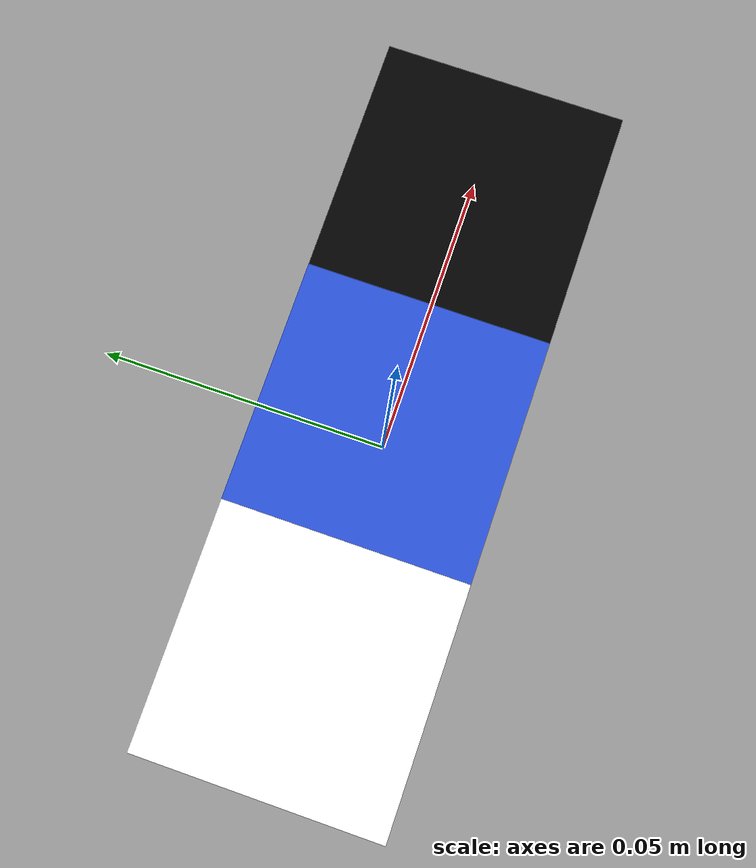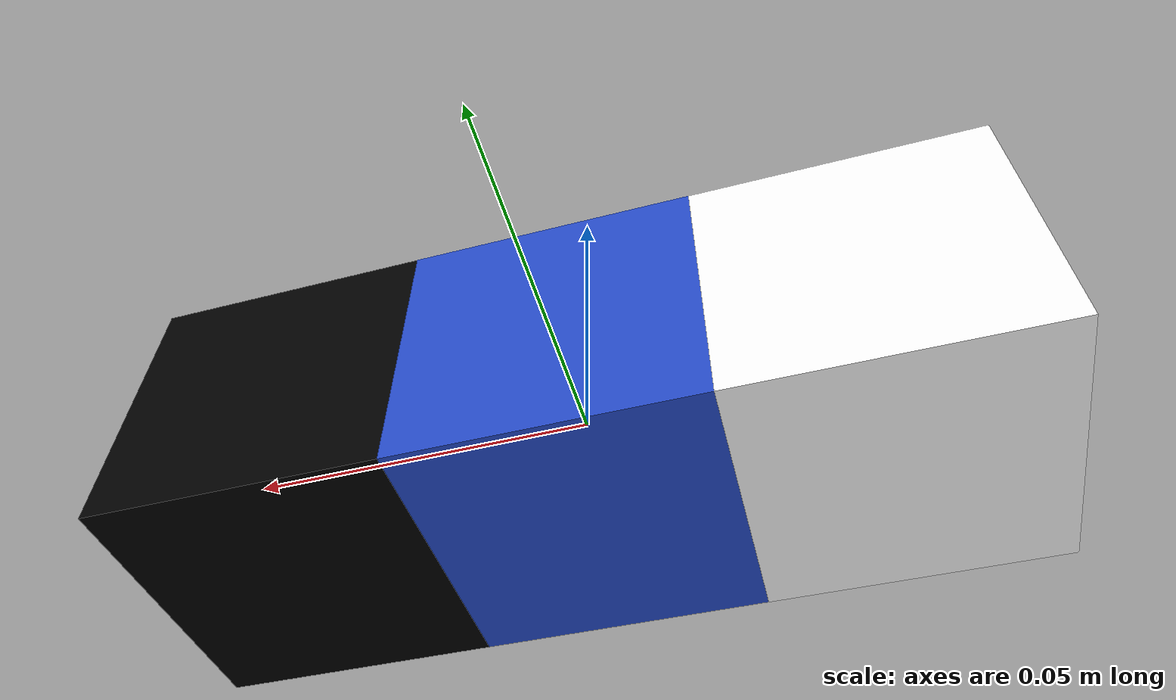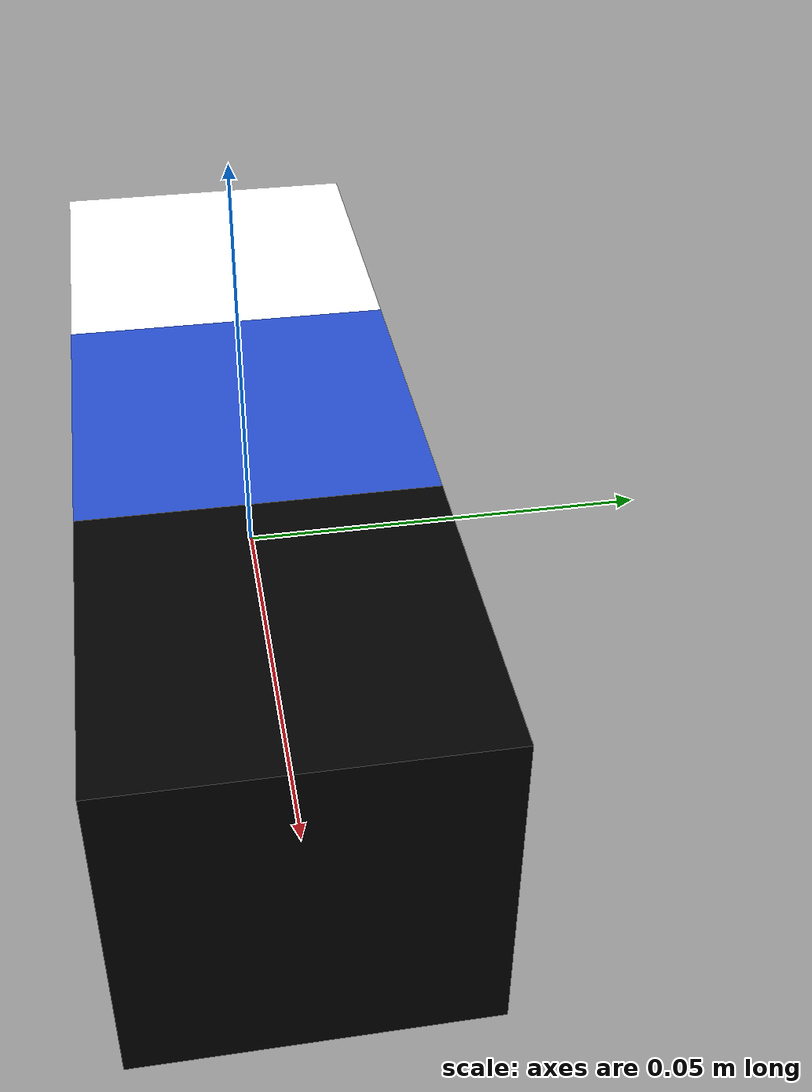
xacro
<?xml version="1.0" encoding="utf-8"?>
<robot xmlns:xacro="http://www.ros.org/wiki/xacro" name="object">
  <xacro:arg name="side_length" default="0.04" />
  <xacro:arg name="mass_m" default="0.05" />
  <xacro:arg name="mass_l" default="0.05" />
  <xacro:arg name="mass_r" default="0.05" />
  <xacro:arg name="file_name" default="single_cube" />

  <xacro:include filename="$(find moma_description)/urdf/$(arg file_name).xacro" />
  <xacro:i_object side_length="$(arg side_length)"
    mass_m="$(arg mass_m)"
    mass_l="$(arg mass_l)"
    mass_r="$(arg mass_r)" />

  <!-- Apply gazebo fix to succesfully grasp objects -->

</robot>

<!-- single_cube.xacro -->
<robot xmlns:xacro="http://www.ros.org/wiki/xacro">
<!-- adapted from https://github.com/CentroEPiaggio/vito-robot/blob/master/vito_description/model/table.urdf.xacro -->

  <!-- Adapted from franka_description/robots/common/franka_robot.xacro -->
  <xacro:macro name="i_object"
    params="
    side_length:='0.04'
    mass_m:='0.05'
    mass_l:='0.05'
    mass_r:='0.05'">

    <!-- No spawn pause configurable in xacro: "URDF can not specify the pose of the robot itself within a world" -->
    <!-- see https://classic.gazebosim.org/tutorials/?tut=ros_urdf -->

    <!-- define size block -->
    <xacro:property name="box_geometry">
      <geometry>
        <box size="${side_length} ${side_length} ${side_length}"/>
      </geometry>
    </xacro:property>

    <material name="blue">
      <color rgba="0 0 0.8 1"/>
    </material>
    <material name="black">
      <color rgba="0 0 0 1"/>
    </material>
    <material name="white">
      <color rgba="1 1 1 1"/>
    </material>

    <link name="middle_cube">
      <visual>
        <xacro:insert_block name="box_geometry"/>
        <!-- The reference frame of the visual element with respect to the reference frame of the link. -->
        <origin rpy="0 0 0" xyz="0.0 0.0 0.0"/>
      </visual>
      <collision>
        <xacro:insert_block name="box_geometry"/>
        <!-- The reference frame of the collision element, relative to the reference frame of the link.  -->
        <origin rpy="0 0 0" xyz="0.0 0.0 0.0"/>
      </collision>
      <inertial>
        <!-- This pose (translation, rotation) describes the position and orientation of the link’s center of mass frame C relative to the link-frame L.  -->
        <origin rpy="0 0 0" xyz="0.0 0.0 0.0"/>
        <mass value="${mass_m}"/>
        <inertia ixx="${1/12 * mass_m * (side_length*side_length + side_length*side_length)}" ixy="0.0" ixz="0.0"
                  iyy="0.0000416" iyz="0.0" izz="${1/12 * mass_m * (side_length*side_length + side_length*side_length)}"/>
      </inertial>
    </link>

    <link name="left_cube">
      <visual>
        <xacro:insert_block name="box_geometry"/>
        <origin rpy="0 0 0" xyz="0.0 0 0"/>
        <material name="white"/>
      </visual>
      <collision>
        <xacro:insert_block name="box_geometry"/>
      </collision>
      <inertial>
        <mass value="${mass_l}"/>
        <inertia ixx="${1/12 * mass_l * (side_length*side_length + side_length*side_length)}" ixy="0.0" ixz="0.0"
                  iyy="0.0000416" iyz="0.0" izz="${1/12 * mass_l * (side_length*side_length + side_length*side_length)}"/>
      </inertial>
    </link>

    <!-- Let’s start by examining the joint’s origin. It is defined in terms of the parent’s reference frame. -->
    <joint name="left_to_middle" type="fixed">
      <parent link="middle_cube"/>
      <child link="left_cube"/>
      <origin xyz="-${side_length} 0 0"/>
    </joint>

    <link name="right_cube">
      <visual>
        <xacro:insert_block name="box_geometry"/>
        <origin rpy="0 0 0" xyz="0.0 0 0"/>
        <material name="black"/>
      </visual>
      <collision>
        <xacro:insert_block name="box_geometry"/>
      </collision>
      <inertial>
        <mass value="${mass_r}"/>
        <inertia ixx="${1/12 * mass_r * (side_length*side_length + side_length*side_length)}" ixy="0.0" ixz="0.0"
                  iyy="0.0000416" iyz="0.0" izz="${1/12 * mass_r * (side_length*side_length + side_length*side_length)}"/>
      </inertial>
    </link>

    <!-- Let’s start by examining the joint’s origin. It is defined in terms of the parent’s reference frame. -->
    <joint name="right_to_middle" type="fixed">
      <parent link="middle_cube"/>
      <child link="right_cube"/>
      <origin xyz="${side_length} 0 0"/>
    </joint>

    <!-- create gazebo colors -->
    <gazebo reference="middle_cube">
      <material>Gazebo/Blue</material>
    </gazebo>
    <gazebo reference="right_cube">
      <material>Gazebo/Black</material>
    </gazebo>
     <gazebo reference="left_cube">
      <material>Gazebo/White</material>
    </gazebo>

  </xacro:macro>

</robot>
